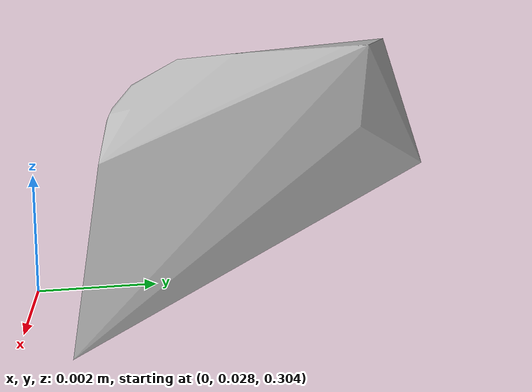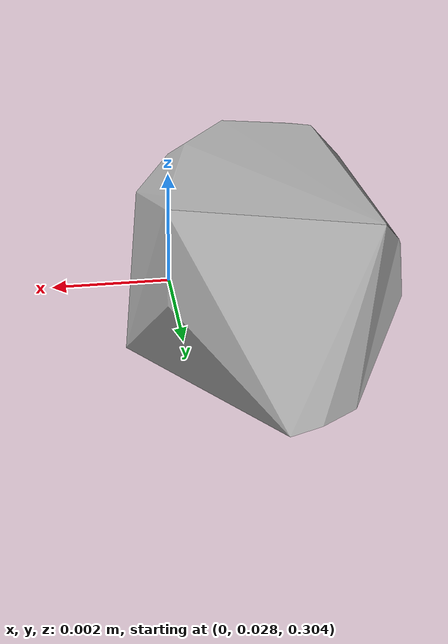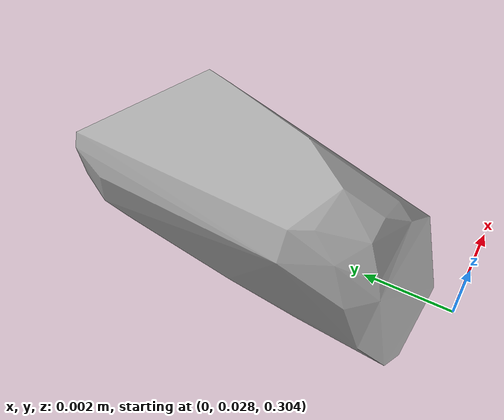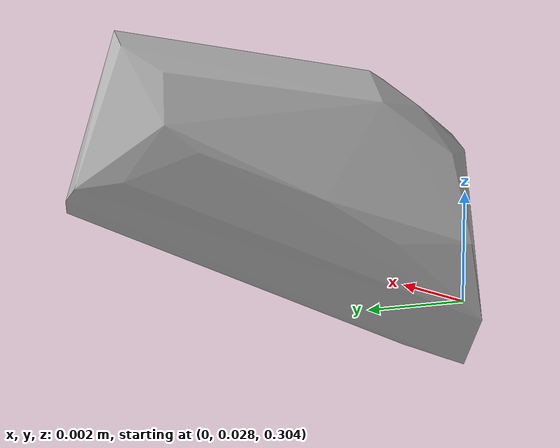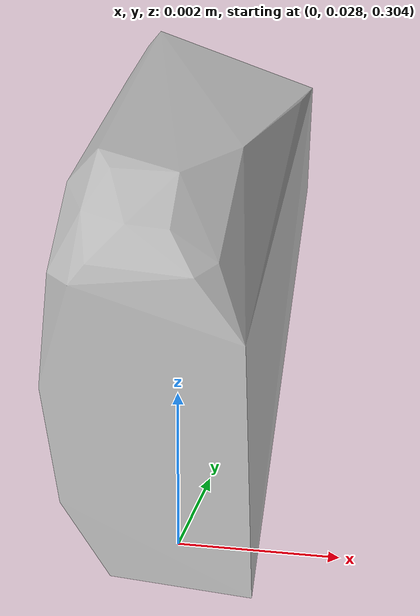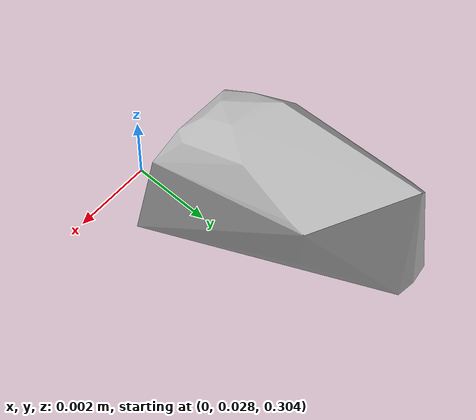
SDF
<?xml version="1.0"?>
<sdf version="1.7">
  <model name="vascular_partexport004">
    <link name="vascular_partexport004_body">
      <visual name="vascular_partexport004_visual">
        <geometry>
          <mesh>
            <uri>vascular_partexport004.obj</uri>
          </mesh>
        </geometry>
      </visual>
      <collision name="vascular_partexport004_collision">
        <geometry>
          <mesh>
            <uri>vascular_partexport004.obj</uri>
          </mesh>
        </geometry>
      </collision>
    </link>
    <frame name="vascular_partexport004_center">
      <pose relative_to="vascular_partexport004_body">0 0 0 0 0 0</pose>
    </frame>
  </model>
</sdf>
